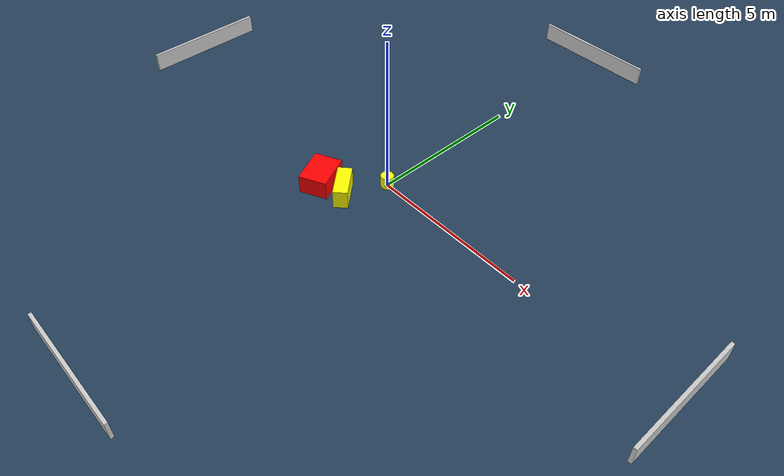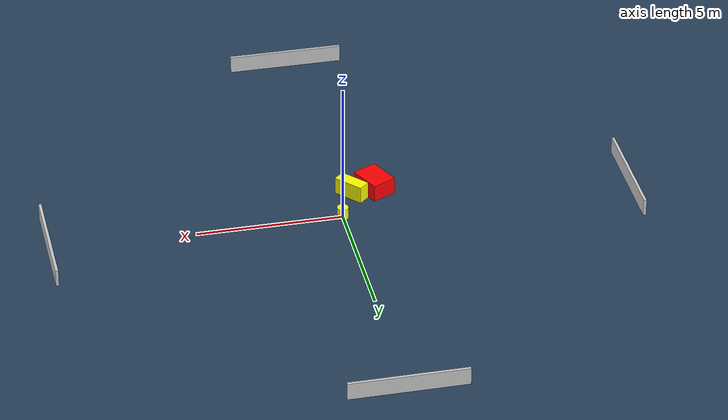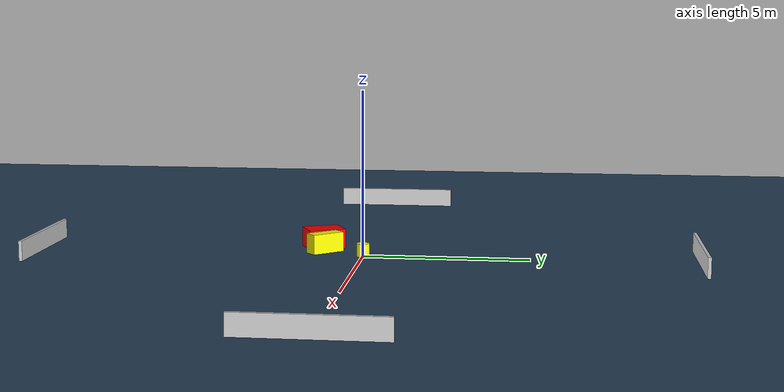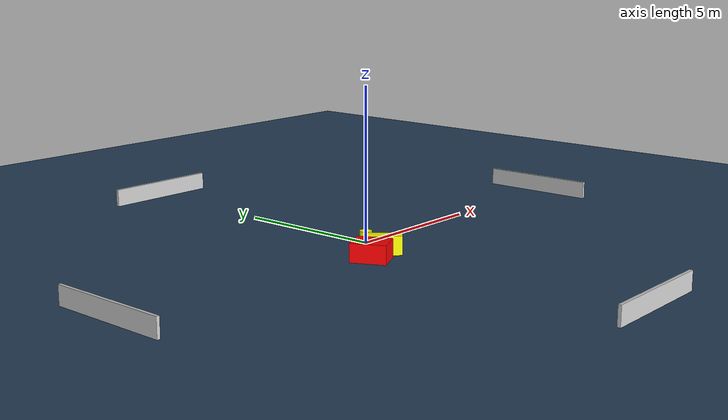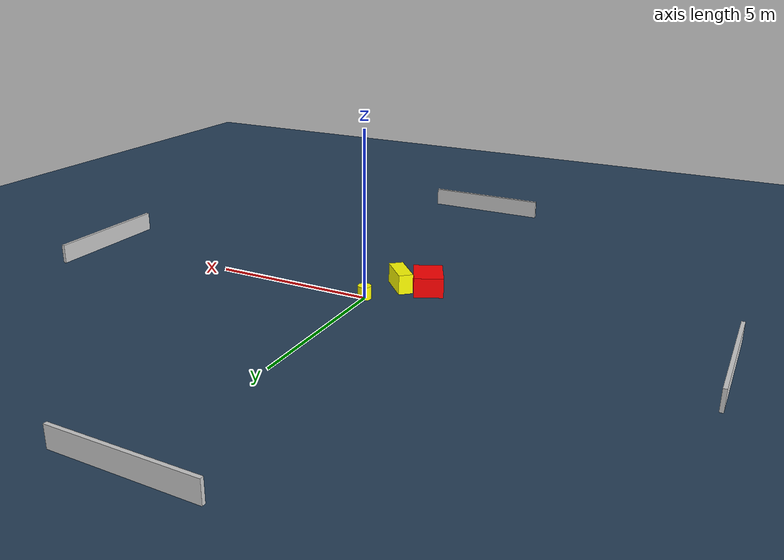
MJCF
<?xml version="1.0" ?>
<mujoco model="generated_environment">
  <option timestep="0.01" integrator="RK4" cone="elliptic"/>
  <default>
    <geom density="1"/>
  </default>
  <asset>
    <texture builtin="gradient" height="3072" name="skybox" rgb1="0.3 0.5 0.7" rgb2="0 0 0" type="skybox" width="512"/>
    <texture builtin="checker" height="300" name="groundplane" rgb1="0.2 0.3 0.4" rgb2="0.1 0.2 0.3" type="2d" width="300"/>
    <material name="groundplane" reflectance="0.2" texrepeat="5 5" texture="groundplane"/>
  </asset>
  <worldbody>
    <light dir="0 0 -1" directional="true" pos="0 0 1.5"/>
    <geom condim="3" friction="0.5 0.005 0.001" material="groundplane" name="floor" pos="0 0 0" size="0 0 0.05" type="plane"/>
    <body name="walls">
      <geom name="wall_1" condim="4" pos="-10.0 0.0 0.3" rgba="0.800000011920929 0.800000011920929 0.800000011920929 1.0" size="0.05 2.0 0.3" type="box"/>
      <geom name="wall_2" condim="4" pos="10.0 0.0 0.3" rgba="0.800000011920929 0.800000011920929 0.800000011920929 1.0" size="0.05 2.0 0.3" type="box"/>
      <geom name="wall_3" condim="4" pos="0.0 -10.0 0.3" rgba="0.800000011920929 0.800000011920929 0.800000011920929 1.0" size="2.0 0.05 0.3" type="box"/>
      <geom name="wall_4" condim="4" pos="0.0 10.0 0.3" rgba="0.800000011920929 0.800000011920929 0.800000011920929 1.0" size="2.0 0.05 0.3" type="box"/>
    </body>
    <body name="robot">
      <joint name="joint_x" type="slide" pos="0 0 0" axis="1 0 0"/>
      <joint name="joint_y" type="slide" pos="0 0 0" axis="0 1 0"/>
      <geom name="robot" type="cylinder" pos="0.0 0.0 0.2" size="0.2 0.2 0.0" mass="5.0" friction="1.0 0.005 0.0001" condim="4" rgba="1.0 1.0 0.0 1.0"/>
    </body>
    <body name="obstacle_1_movable">
      <geom name="obstacle_1_movable" condim="4" pos="-0.5679645943019157 -1.2456366965284924 0.3" euler="0 0 42.1912060393512" friction="0.0 0.005 0.001" rgba="1.0 1.0 0.0 1.0" size="0.21976869780254882 0.5414430575614979 0.3" type="box" mass="0.1"/>
      <joint type="free"/>
    </body>
    <body name="obstacle_2_static">
      <geom name="obstacle_2_static" condim="4" pos="-1.3959132065996276 -1.4079713794334148 0.3" euler="0 0 205.6284568121125" friction="0.0 0.005 0.001" rgba="1.0 0.0 0.0 1.0" size="0.4383941117729177 0.5674778441248027 0.3" type="box"/>
    </body>
  </worldbody>
  <actuator>
    <motor name="actuator_x" joint="joint_x" gear="1" ctrlrange="-1 1"/>
    <motor name="actuator_y" joint="joint_y" gear="1" ctrlrange="-1 1"/>
  </actuator>
</mujoco>
